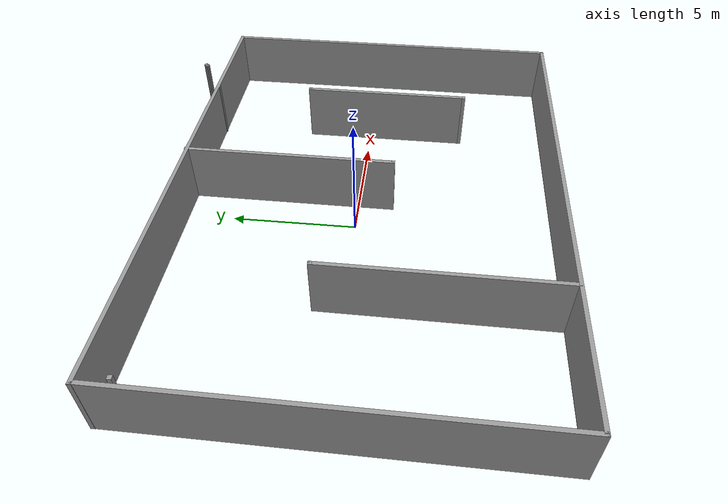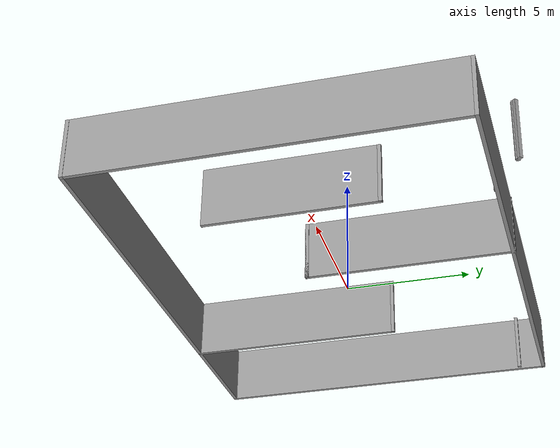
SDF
<?xml version='1.0'?>
<sdf version='1.6'>
  <model name='maze'>
    <pose frame=''>0.502635 0.061306 0 0 -0 0</pose>
    <link name='Wall_1'>
      <collision name='Wall_1_Collision'>
        <geometry>
          <box>
            <size>0.15 0.15 2.5</size>
          </box>
        </geometry>
        <pose frame=''>0 0 1.25 0 -0 0</pose>
      </collision>
      <visual name='Wall_1_Visual'>
        <pose frame=''>0 0 1.25 0 -0 0</pose>
        <geometry>
          <box>
            <size>0.15 0.15 2.5</size>
          </box>
        </geometry>
        <material>
          <script>
            <uri>file://media/materials/scripts/gazebo.material</uri>
            <name>Gazebo/Grey</name>
          </script>
          <ambient>1 1 1 1</ambient>
        </material>
        <meta>
          <layer>0</layer>
        </meta>
      </visual>
      <pose frame=''>-9.66214 5.817 0 0 -0 0</pose>
    </link>
    <link name='Wall_10'>
      <collision name='Wall_10_Collision'>
        <geometry>
          <box>
            <size>0.16 0.15 2.5</size>
          </box>
        </geometry>
        <pose frame=''>0 0 1.25 0 -0 0</pose>
      </collision>
      <visual name='Wall_10_Visual'>
        <pose frame=''>0 0 1.25 0 -0 0</pose>
        <geometry>
          <box>
            <size>0.16 0.15 2.5</size>
          </box>
        </geometry>
        <material>
          <script>
            <uri>file://media/materials/scripts/gazebo.material</uri>
            <name>Gazebo/Grey</name>
          </script>
          <ambient>1 1 1 1</ambient>
        </material>
        <meta>
          <layer>0</layer>
        </meta>
      </visual>
      <pose frame=''>-9.93 6.88162 0 0 -0 0</pose>
    </link>
    <link name='Wall_11'>
      <collision name='Wall_11_Collision'>
        <geometry>
          <box>
            <size>0.16 0.15 2.5</size>
          </box>
        </geometry>
        <pose frame=''>0 0 1.25 0 -0 0</pose>
      </collision>
      <visual name='Wall_11_Visual'>
        <pose frame=''>0 0 1.25 0 -0 0</pose>
        <geometry>
          <box>
            <size>0.16 0.15 2.5</size>
          </box>
        </geometry>
        <material>
          <script>
            <uri>file://media/materials/scripts/gazebo.material</uri>
            <name>Gazebo/Grey</name>
          </script>
          <ambient>1 1 1 1</ambient>
        </material>
        <meta>
          <layer>0</layer>
        </meta>
      </visual>
      <pose frame=''>-9.93 6.88162 0 0 -0 3.14159</pose>
    </link>
    <link name='Wall_16'>
      <collision name='Wall_16_Collision'>
        <geometry>
          <box>
            <size>15 0.15 2.5</size>
          </box>
        </geometry>
        <pose frame=''>0 0 1.25 0 -0 0</pose>
      </collision>
      <visual name='Wall_16_Visual'>
        <pose frame=''>0 0 1.25 0 -0 0</pose>
        <geometry>
          <box>
            <size>15 0.15 2.5</size>
          </box>
        </geometry>
        <material>
          <script>
            <uri>file://media/materials/scripts/gazebo.material</uri>
            <name>Gazebo/Grey</name>
          </script>
          <ambient>1 1 1 1</ambient>
        </material>
        <meta>
          <layer>0</layer>
        </meta>
      </visual>
      <pose frame=''>-9.925 -0.543383 0 0 -0 -1.5708</pose>
    </link>
    <link name='Wall_17'>
      <collision name='Wall_17_Collision'>
        <geometry>
          <box>
            <size>0.15 0.15 2.5</size>
          </box>
        </geometry>
        <pose frame=''>0 0 1.25 0 -0 0</pose>
      </collision>
      <visual name='Wall_17_Visual'>
        <pose frame=''>0 0 1.25 0 -0 0</pose>
        <geometry>
          <box>
            <size>0.15 0.15 2.5</size>
          </box>
        </geometry>
        <material>
          <script>
            <uri>file://media/materials/scripts/gazebo.material</uri>
            <name>Gazebo/Grey</name>
          </script>
          <ambient>1 1 1 1</ambient>
        </material>
        <meta>
          <layer>0</layer>
        </meta>
      </visual>
      <pose frame=''>-9.925 -7.96838 0 0 -0 0</pose>
    </link>
    <link name='Wall_18'>
      <collision name='Wall_18_Collision'>
        <geometry>
          <box>
            <size>0.15 0.15 2.5</size>
          </box>
        </geometry>
        <pose frame=''>0 0 1.25 0 -0 0</pose>
      </collision>
      <visual name='Wall_18_Visual'>
        <pose frame=''>0 0 1.25 0 -0 0</pose>
        <geometry>
          <box>
            <size>0.15 0.15 2.5</size>
          </box>
        </geometry>
        <material>
          <script>
            <uri>file://media/materials/scripts/gazebo.material</uri>
            <name>Gazebo/Grey</name>
          </script>
          <ambient>1 1 1 1</ambient>
        </material>
        <meta>
          <layer>0</layer>
        </meta>
      </visual>
      <pose frame=''>-9.925 -7.96838 0 0 -0 0</pose>
    </link>
    <link name='Wall_22'>
      <collision name='Wall_22_Collision'>
        <geometry>
          <box>
            <size>20 0.15 2.5</size>
          </box>
        </geometry>
        <pose frame=''>0 0 1.25 0 -0 0</pose>
      </collision>
      <visual name='Wall_22_Visual'>
        <pose frame=''>0 0 1.25 0 -0 0</pose>
        <geometry>
          <box>
            <size>20 0.15 2.5</size>
          </box>
        </geometry>
        <material>
          <script>
            <uri>file://media/materials/scripts/gazebo.material</uri>
            <name>Gazebo/Grey</name>
          </script>
          <ambient>1 1 1 1</ambient>
        </material>
        <meta>
          <layer>0</layer>
        </meta>
      </visual>
      <pose frame=''>0 -7.96838 0 0 -0 0</pose>
    </link>
    <link name='Wall_23'>
      <collision name='Wall_23_Collision'>
        <geometry>
          <box>
            <size>0.16 0.15 2.5</size>
          </box>
        </geometry>
        <pose frame=''>0 0 1.25 0 -0 0</pose>
      </collision>
      <visual name='Wall_23_Visual'>
        <pose frame=''>0 0 1.25 0 -0 0</pose>
        <geometry>
          <box>
            <size>0.16 0.15 2.5</size>
          </box>
        </geometry>
        <material>
          <script>
            <uri>file://media/materials/scripts/gazebo.material</uri>
            <name>Gazebo/Grey</name>
          </script>
          <ambient>1 1 1 1</ambient>
        </material>
        <meta>
          <layer>0</layer>
        </meta>
      </visual>
      <pose frame=''>9.93 -7.96838 0 0 -0 0</pose>
    </link>
    <link name='Wall_28'>
      <collision name='Wall_28_Collision'>
        <geometry>
          <box>
            <size>15 0.15 2.5</size>
          </box>
        </geometry>
        <pose frame=''>0 0 1.25 0 -0 0</pose>
      </collision>
      <visual name='Wall_28_Visual'>
        <pose frame=''>0 0 1.25 0 -0 0</pose>
        <geometry>
          <box>
            <size>15 0.15 2.5</size>
          </box>
        </geometry>
        <material>
          <script>
            <uri>file://media/materials/scripts/gazebo.material</uri>
            <name>Gazebo/Grey</name>
          </script>
          <ambient>1 1 1 1</ambient>
        </material>
        <meta>
          <layer>0</layer>
        </meta>
      </visual>
      <pose frame=''>9.925 -0.543383 0 0 -0 1.5708</pose>
    </link>
    <link name='Wall_29'>
      <collision name='Wall_29_Collision'>
        <geometry>
          <box>
            <size>0.15 0.15 2.5</size>
          </box>
        </geometry>
        <pose frame=''>0 0 1.25 0 -0 0</pose>
      </collision>
      <visual name='Wall_29_Visual'>
        <pose frame=''>0 0 1.25 0 -0 0</pose>
        <geometry>
          <box>
            <size>0.15 0.15 2.5</size>
          </box>
        </geometry>
        <material>
          <script>
            <uri>file://media/materials/scripts/gazebo.material</uri>
            <name>Gazebo/Grey</name>
          </script>
          <ambient>1 1 1 1</ambient>
        </material>
        <meta>
          <layer>0</layer>
        </meta>
      </visual>
      <pose frame=''>9.925 6.88162 0 0 -0 0</pose>
    </link>
    <link name='Wall_33'>
      <collision name='Wall_33_Collision'>
        <geometry>
          <box>
            <size>20 0.15 2.5</size>
          </box>
        </geometry>
        <pose frame=''>0 0 1.25 0 -0 0</pose>
      </collision>
      <visual name='Wall_33_Visual'>
        <pose frame=''>0 0 1.25 0 -0 0</pose>
        <geometry>
          <box>
            <size>20 0.15 2.5</size>
          </box>
        </geometry>
        <material>
          <script>
            <uri>file://media/materials/scripts/gazebo.material</uri>
            <name>Gazebo/Grey</name>
          </script>
          <ambient>1 1 1 1</ambient>
        </material>
        <meta>
          <layer>0</layer>
        </meta>
      </visual>
      <pose frame=''>0 6.88162 0 0 -0 0</pose>
    </link>
    <link name='Wall_34'>
      <collision name='Wall_34_Collision'>
        <geometry>
          <box>
            <size>0.15 0.15 2.5</size>
          </box>
        </geometry>
        <pose frame=''>0 0 1.25 0 -0 0</pose>
      </collision>
      <visual name='Wall_34_Visual'>
        <pose frame=''>0 0 1.25 0 -0 0</pose>
        <geometry>
          <box>
            <size>0.15 0.15 2.5</size>
          </box>
        </geometry>
        <material>
          <script>
            <uri>file://media/materials/scripts/gazebo.material</uri>
            <name>Gazebo/Grey</name>
          </script>
          <ambient>1 1 1 1</ambient>
        </material>
        <meta>
          <layer>0</layer>
        </meta>
      </visual>
      <pose frame=''>9.925 6.88162 0 0 -0 0</pose>
    </link>
    <link name='Wall_39'>
      <collision name='Wall_39_Collision'>
        <geometry>
          <box>
            <size>9 0.15 2.5</size>
          </box>
        </geometry>
        <pose frame=''>0 0 1.25 0 -0 0</pose>
      </collision>
      <visual name='Wall_39_Visual'>
        <pose frame=''>0 0 1.25 0 -0 0</pose>
        <geometry>
          <box>
            <size>9 0.15 2.5</size>
          </box>
        </geometry>
        <material>
          <script>
            <uri>file://media/materials/scripts/gazebo.material</uri>
            <name>Gazebo/Grey</name>
          </script>
          <ambient>1 1 1 1</ambient>
        </material>
        <meta>
          <layer>0</layer>
        </meta>
      </visual>
      <pose frame=''>-4.76532 -3.50671 0 0 -0 1.5708</pose>
    </link>
    <link name='Wall_4'>
      <collision name='Wall_4_Collision'>
        <geometry>
          <box>
            <size>0.15 0.15 2.5</size>
          </box>
        </geometry>
        <pose frame=''>0 0 1.25 0 -0 0</pose>
      </collision>
      <visual name='Wall_4_Visual'>
        <pose frame=''>0 0 1.25 0 -0 0</pose>
        <geometry>
          <box>
            <size>0.15 0.15 2.5</size>
          </box>
        </geometry>
        <material>
          <script>
            <uri>file://media/materials/scripts/gazebo.material</uri>
            <name>Gazebo/Grey</name>
          </script>
          <ambient>1 1 1 1</ambient>
        </material>
        <meta>
          <layer>0</layer>
        </meta>
      </visual>
      <pose frame=''>5.3487 6.8512 0 0 -0 0</pose>
    </link>
    <link name='Wall_40'>
      <collision name='Wall_40_Collision'>
        <geometry>
          <box>
            <size>0.15 0.15 2.5</size>
          </box>
        </geometry>
        <pose frame=''>0 0 1.25 0 -0 0</pose>
      </collision>
      <visual name='Wall_40_Visual'>
        <pose frame=''>0 0 1.25 0 -0 0</pose>
        <geometry>
          <box>
            <size>0.15 0.15 2.5</size>
          </box>
        </geometry>
        <material>
          <script>
            <uri>file://media/materials/scripts/gazebo.material</uri>
            <name>Gazebo/Grey</name>
          </script>
          <ambient>1 1 1 1</ambient>
        </material>
        <meta>
          <layer>0</layer>
        </meta>
      </visual>
      <pose frame=''>-4.76532 0.918295 0 0 -0 0</pose>
    </link>
    <link name='Wall_42'>
      <collision name='Wall_42_Collision'>
        <geometry>
          <box>
            <size>8.5 0.15 2.5</size>
          </box>
        </geometry>
        <pose frame=''>0 0 1.25 0 -0 0</pose>
      </collision>
      <visual name='Wall_42_Visual'>
        <pose frame=''>0 0 1.25 0 -0 0</pose>
        <geometry>
          <box>
            <size>8.5 0.15 2.5</size>
          </box>
        </geometry>
        <material>
          <script>
            <uri>file://media/materials/scripts/gazebo.material</uri>
            <name>Gazebo/Grey</name>
          </script>
          <ambient>1 1 1 1</ambient>
        </material>
        <meta>
          <layer>0</layer>
        </meta>
      </visual>
      <pose frame=''>0.801082 2.73704 0 0 -0 -1.5708</pose>
    </link>
    <link name='Wall_43'>
      <collision name='Wall_43_Collision'>
        <geometry>
          <box>
            <size>0.16 0.15 2.5</size>
          </box>
        </geometry>
        <pose frame=''>0 0 1.25 0 -0 0</pose>
      </collision>
      <visual name='Wall_43_Visual'>
        <pose frame=''>0 0 1.25 0 -0 0</pose>
        <geometry>
          <box>
            <size>0.16 0.15 2.5</size>
          </box>
        </geometry>
        <material>
          <script>
            <uri>file://media/materials/scripts/gazebo.material</uri>
            <name>Gazebo/Grey</name>
          </script>
          <ambient>1 1 1 1</ambient>
        </material>
        <meta>
          <layer>0</layer>
        </meta>
      </visual>
      <pose frame=''>0.806082 -1.43796 0 0 -0 0</pose>
    </link>
    <link name='Wall_44'>
      <collision name='Wall_44_Collision'>
        <geometry>
          <box>
            <size>0.16 0.15 2.5</size>
          </box>
        </geometry>
        <pose frame=''>0 0 1.25 0 -0 0</pose>
      </collision>
      <visual name='Wall_44_Visual'>
        <pose frame=''>0 0 1.25 0 -0 0</pose>
        <geometry>
          <box>
            <size>0.16 0.15 2.5</size>
          </box>
        </geometry>
        <material>
          <script>
            <uri>file://media/materials/scripts/gazebo.material</uri>
            <name>Gazebo/Grey</name>
          </script>
          <ambient>1 1 1 1</ambient>
        </material>
        <meta>
          <layer>0</layer>
        </meta>
      </visual>
      <pose frame=''>0.806082 -1.43796 0 0 -0 3.14159</pose>
    </link>
    <link name='Wall_46'>
      <collision name='Wall_46_Collision'>
        <geometry>
          <box>
            <size>0.16 0.15 2.5</size>
          </box>
        </geometry>
        <pose frame=''>0 0 1.25 0 -0 0</pose>
      </collision>
      <visual name='Wall_46_Visual'>
        <pose frame=''>0 0 1.25 0 -0 0</pose>
        <geometry>
          <box>
            <size>0.16 0.15 2.5</size>
          </box>
        </geometry>
        <material>
          <script>
            <uri>file://media/materials/scripts/gazebo.material</uri>
            <name>Gazebo/Grey</name>
          </script>
          <ambient>1 1 1 1</ambient>
        </material>
        <meta>
          <layer>0</layer>
        </meta>
      </visual>
      <pose frame=''>5.61205 -4.19035 0 0 -0 0</pose>
    </link>
    <link name='Wall_47'>
      <collision name='Wall_47_Collision'>
        <geometry>
          <box>
            <size>7 0.15 2.5</size>
          </box>
        </geometry>
        <pose frame=''>0 0 1.25 0 -0 0</pose>
      </collision>
      <visual name='Wall_47_Visual'>
        <pose frame=''>0 0 1.25 0 -0 0</pose>
        <geometry>
          <box>
            <size>7 0.15 2.5</size>
          </box>
        </geometry>
        <material>
          <script>
            <uri>file://media/materials/scripts/gazebo.material</uri>
            <name>Gazebo/Grey</name>
          </script>
          <ambient>1 1 1 1</ambient>
        </material>
        <meta>
          <layer>0</layer>
        </meta>
      </visual>
      <pose frame=''>5.61705 -0.765353 0 0 -0 1.5708</pose>
    </link>
    <link name='Wall_48'>
      <collision name='Wall_48_Collision'>
        <geometry>
          <box>
            <size>0.16 0.15 2.5</size>
          </box>
        </geometry>
        <pose frame=''>0 0 1.25 0 -0 0</pose>
      </collision>
      <visual name='Wall_48_Visual'>
        <pose frame=''>0 0 1.25 0 -0 0</pose>
        <geometry>
          <box>
            <size>0.16 0.15 2.5</size>
          </box>
        </geometry>
        <material>
          <script>
            <uri>file://media/materials/scripts/gazebo.material</uri>
            <name>Gazebo/Grey</name>
          </script>
          <ambient>1 1 1 1</ambient>
        </material>
        <meta>
          <layer>0</layer>
        </meta>
      </visual>
      <pose frame=''>5.62205 2.65965 0 0 -0 0</pose>
    </link>
    <link name='Wall_7'>
      <collision name='Wall_7_Collision'>
        <geometry>
          <box>
            <size>0.16 0.15 2.5</size>
          </box>
        </geometry>
        <pose frame=''>0 0 1.25 0 -0 0</pose>
      </collision>
      <visual name='Wall_7_Visual'>
        <pose frame=''>0 0 1.25 0 -0 0</pose>
        <geometry>
          <box>
            <size>0.16 0.15 2.5</size>
          </box>
        </geometry>
        <material>
          <script>
            <uri>file://media/materials/scripts/gazebo.material</uri>
            <name>Gazebo/Grey</name>
          </script>
          <ambient>1 1 1 1</ambient>
        </material>
        <meta>
          <layer>0</layer>
        </meta>
      </visual>
      <pose frame=''>7.07209 7.86661 0 0 -0 0</pose>
    </link>
    <link name='Wall_8'>
      <collision name='Wall_8_Collision'>
        <geometry>
          <box>
            <size>0.25 0.15 2.5</size>
          </box>
        </geometry>
        <pose frame=''>0 0 1.25 0 -0 0</pose>
      </collision>
      <visual name='Wall_8_Visual'>
        <pose frame=''>0 0 1.25 0 -0 0</pose>
        <geometry>
          <box>
            <size>0.25 0.15 2.5</size>
          </box>
        </geometry>
        <material>
          <script>
            <uri>file://media/materials/scripts/gazebo.material</uri>
            <name>Gazebo/Grey</name>
          </script>
          <ambient>0 0 0 0</ambient>
        </material>
        <meta>
          <layer>0</layer>
        </meta>
      </visual>
      <pose frame=''>7.11244 7.90196 0 0 -0 0.785398</pose>
    </link>
    <static>1</static>
  </model>
</sdf>
